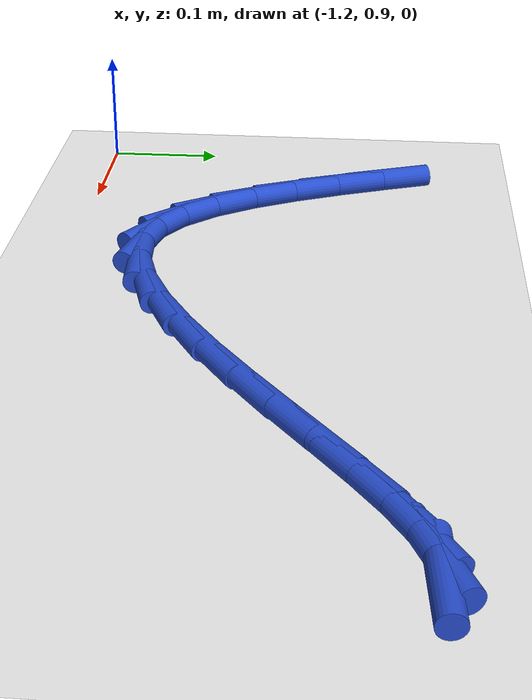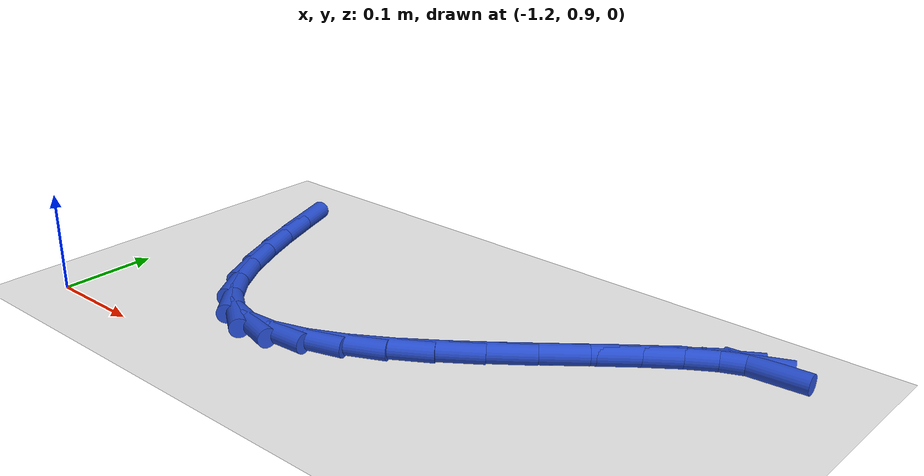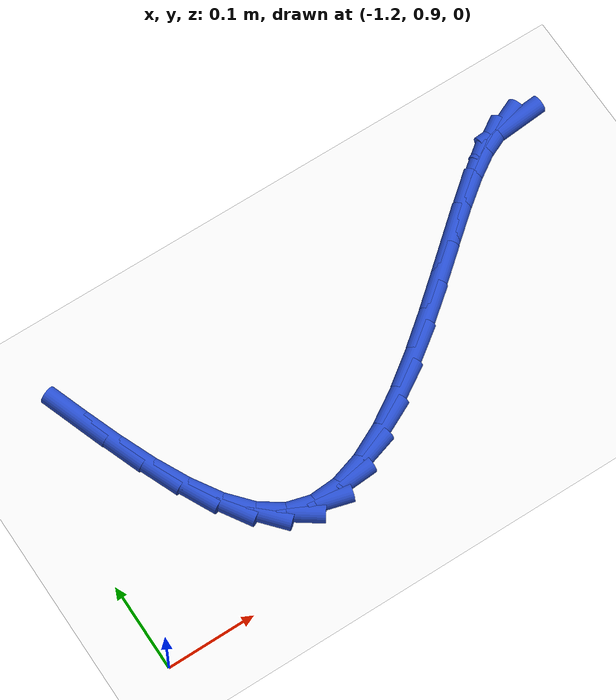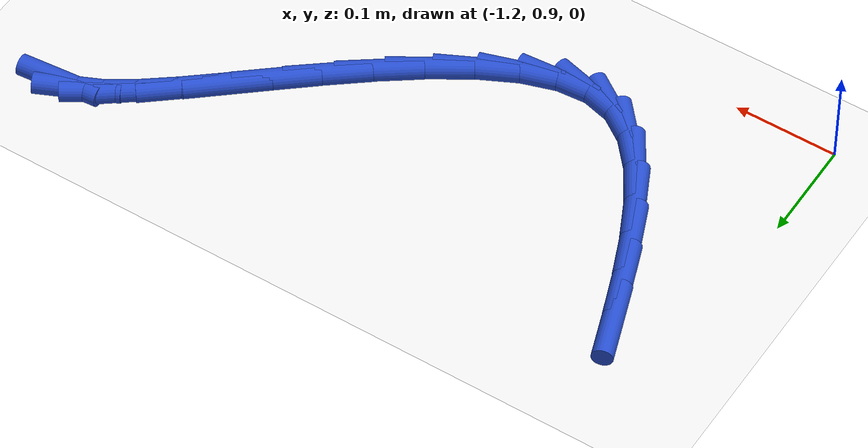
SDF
<sdf version="1.6">
 <world name="default">
  <model name="ground_plane">
   <static>1</static>
   <link name="link">
    <collision name="collision">
     <geometry><plane><normal>0 0 1</normal><size>100 100</size></plane></geometry>
     <surface><friction><ode><mu>100</mu><mu2>50</mu2></ode></friction></surface>
    </collision>
    <visual name="visual">
     <cast_shadows>0</cast_shadows>
     <geometry><plane><normal>0 0 1</normal><size>100 100</size></plane></geometry>
     <material>
      <script><uri>file://media/materials/scripts/gazebo.material</uri><name>Gazebo/WhiteGlow</name></script>
     </material>
    </visual>
   </link>
  </model>
  <model name="line">
   <link name="link_40">
    <pose>-0.5845754544402983 1.2047021949950043 0.01 0 1.57 0.08310487150110424</pose>
    <collision name="collision">
     <geometry><cylinder><radius>0.01</radius><length>0.08</length></cylinder></geometry>
    </collision>
    <visual name="visual">
     <material>
      <script><name>Gazebo/Blue</name><uri>file://media/materials/scripts/gazebo.material</uri></script>
     </material>
     <geometry><cylinder><radius>0.01</radius><length>0.08</length></cylinder></geometry>
    </visual>
   </link>
   <link name="link_41">
    <pose>-0.6021812904799191 1.2032356865902885 0.01 0 1.57 0.42419387838292544</pose>
    <collision name="collision">
     <geometry><cylinder><radius>0.01</radius><length>0.08</length></cylinder></geometry>
    </collision>
    <visual name="visual">
     <material>
      <script><name>Gazebo/Blue</name><uri>file://media/materials/scripts/gazebo.material</uri></script>
     </material>
     <geometry><cylinder><radius>0.01</radius><length>0.08</length></cylinder></geometry>
    </visual>
   </link>
   <link name="link_42">
    <pose>-0.6241829758284656 1.1932994556206564 0.01 0 1.57 0.5791119335519502</pose>
    <collision name="collision">
     <geometry><cylinder><radius>0.01</radius><length>0.08</length></cylinder></geometry>
    </collision>
    <visual name="visual">
     <material>
      <script><name>Gazebo/Blue</name><uri>file://media/materials/scripts/gazebo.material</uri></script>
     </material>
     <geometry><cylinder><radius>0.01</radius><length>0.08</length></cylinder></geometry>
    </visual>
   </link>
   <link name="link_43">
    <pose>-0.649989122312652 1.1764248184642894 0.01 0 1.57 0.6548128186955411</pose>
    <collision name="collision">
     <geometry><cylinder><radius>0.01</radius><length>0.08</length></cylinder></geometry>
    </collision>
    <visual name="visual">
     <material>
      <script><name>Gazebo/Blue</name><uri>file://media/materials/scripts/gazebo.material</uri></script>
     </material>
     <geometry><cylinder><radius>0.01</radius><length>0.08</length></cylinder></geometry>
    </visual>
   </link>
   <link name="link_44">
    <pose>-0.679008341759192 1.1541430914993682 0.01 0 1.57 0.6908100697643068</pose>
    <collision name="collision">
     <geometry><cylinder><radius>0.01</radius><length>0.08</length></cylinder></geometry>
    </collision>
    <visual name="visual">
     <material>
      <script><name>Gazebo/Blue</name><uri>file://media/materials/scripts/gazebo.material</uri></script>
     </material>
     <geometry><cylinder><radius>0.01</radius><length>0.08</length></cylinder></geometry>
    </visual>
   </link>
   <link name="link_45">
    <pose>-0.7106492459948 1.1279855911040753 0.01 0 1.57 0.7024462666055163</pose>
    <collision name="collision">
     <geometry><cylinder><radius>0.01</radius><length>0.08</length></cylinder></geometry>
    </collision>
    <visual name="visual">
     <material>
      <script><name>Gazebo/Blue</name><uri>file://media/materials/scripts/gazebo.material</uri></script>
     </material>
     <geometry><cylinder><radius>0.01</radius><length>0.08</length></cylinder></geometry>
    </visual>
   </link>
   <link name="link_46">
    <pose>-0.7443204468461889 1.0994836336565907 0.01 0 1.57 0.6956901455982073</pose>
    <collision name="collision">
     <geometry><cylinder><radius>0.01</radius><length>0.08</length></cylinder></geometry>
    </collision>
    <visual name="visual">
     <material>
      <script><name>Gazebo/Blue</name><uri>file://media/materials/scripts/gazebo.material</uri></script>
     </material>
     <geometry><cylinder><radius>0.01</radius><length>0.08</length></cylinder></geometry>
    </visual>
   </link>
   <link name="link_47">
    <pose>-0.7794305561400736 1.0701685355350967 0.01 0 1.57 0.6718654380980967</pose>
    <collision name="collision">
     <geometry><cylinder><radius>0.01</radius><length>0.08</length></cylinder></geometry>
    </collision>
    <visual name="visual">
     <material>
      <script><name>Gazebo/Blue</name><uri>file://media/materials/scripts/gazebo.material</uri></script>
     </material>
     <geometry><cylinder><radius>0.01</radius><length>0.08</length></cylinder></geometry>
    </visual>
   </link>
   <link name="link_48">
    <pose>-0.8153881857031674 1.0415716131177744 0.01 0 1.57 0.6289795646332477</pose>
    <collision name="collision">
     <geometry><cylinder><radius>0.01</radius><length>0.08</length></cylinder></geometry>
    </collision>
    <visual name="visual">
     <material>
      <script><name>Gazebo/Blue</name><uri>file://media/materials/scripts/gazebo.material</uri></script>
     </material>
     <geometry><cylinder><radius>0.01</radius><length>0.08</length></cylinder></geometry>
    </visual>
   </link>
   <link name="link_49">
    <pose>-0.8516019473621842 1.0152241827828052 0.01 0 1.57 0.5614514153373033</pose>
    <collision name="collision">
     <geometry><cylinder><radius>0.01</radius><length>0.08</length></cylinder></geometry>
    </collision>
    <visual name="visual">
     <material>
      <script><name>Gazebo/Blue</name><uri>file://media/materials/scripts/gazebo.material</uri></script>
     </material>
     <geometry><cylinder><radius>0.01</radius><length>0.08</length></cylinder></geometry>
    </visual>
   </link>
   <link name="link_50">
    <pose>-0.8874804529438383 0.9926575609083705 0.01 0 1.57 0.4585664651938671</pose>
    <collision name="collision">
     <geometry><cylinder><radius>0.01</radius><length>0.08</length></cylinder></geometry>
    </collision>
    <visual name="visual">
     <material>
      <script><name>Gazebo/Blue</name><uri>file://media/materials/scripts/gazebo.material</uri></script>
     </material>
     <geometry><cylinder><radius>0.01</radius><length>0.08</length></cylinder></geometry>
    </visual>
   </link>
   <link name="link_51">
    <pose>-0.9224323142748427 0.9754030638726515 0.01 0 1.57 0.3018759165477437</pose>
    <collision name="collision">
     <geometry><cylinder><radius>0.01</radius><length>0.08</length></cylinder></geometry>
    </collision>
    <visual name="visual">
     <material>
      <script><name>Gazebo/Blue</name><uri>file://media/materials/scripts/gazebo.material</uri></script>
     </material>
     <geometry><cylinder><radius>0.01</radius><length>0.08</length></cylinder></geometry>
    </visual>
   </link>
   <link name="link_52">
    <pose>-0.9558661431819123 0.9649920080538297 0.01 0 1.57 0.06491541904355166</pose>
    <collision name="collision">
     <geometry><cylinder><radius>0.01</radius><length>0.08</length></cylinder></geometry>
    </collision>
    <visual name="visual">
     <material>
      <script><name>Gazebo/Blue</name><uri>file://media/materials/scripts/gazebo.material</uri></script>
     </material>
     <geometry><cylinder><radius>0.01</radius><length>0.08</length></cylinder></geometry>
    </visual>
   </link>
   <link name="link_53">
    <pose>-0.9871905514917602 0.9629557098300862 0.01 0 1.57 -0.26773312363121343</pose>
    <collision name="collision">
     <geometry><cylinder><radius>0.01</radius><length>0.08</length></cylinder></geometry>
    </collision>
    <visual name="visual">
     <material>
      <script><name>Gazebo/Blue</name><uri>file://media/materials/scripts/gazebo.material</uri></script>
     </material>
     <geometry><cylinder><radius>0.01</radius><length>0.08</length></cylinder></geometry>
    </visual>
   </link>
   <link name="link_54">
    <pose>-1.0158187960517608 0.9708089856566822 0.01 0 1.57 -0.6133430454166195</pose>
    <collision name="collision">
     <geometry><cylinder><radius>0.01</radius><length>0.08</length></cylinder></geometry>
    </collision>
    <visual name="visual">
     <material>
      <script><name>Gazebo/Blue</name><uri>file://media/materials/scripts/gazebo.material</uri></script>
     </material>
     <geometry><cylinder><radius>0.01</radius><length>0.08</length></cylinder></geometry>
    </visual>
   </link>
   <link name="link_55">
    <pose>-1.0414970492469429 0.9888840779784157 0.01 0 1.57 -0.8587390230001272</pose>
    <collision name="collision">
     <geometry><cylinder><radius>0.01</radius><length>0.08</length></cylinder></geometry>
    </collision>
    <visual name="visual">
     <material>
      <script><name>Gazebo/Blue</name><uri>file://media/materials/scripts/gazebo.material</uri></script>
     </material>
     <geometry><cylinder><radius>0.01</radius><length>0.08</length></cylinder></geometry>
    </visual>
   </link>
   <link name="link_56">
    <pose>-1.0645213549467363 1.0155599898955874 0.01 0 1.57 -1.0165618677070125</pose>
    <collision name="collision">
     <geometry><cylinder><radius>0.01</radius><length>0.08</length></cylinder></geometry>
    </collision>
    <visual name="visual">
     <material>
      <script><name>Gazebo/Blue</name><uri>file://media/materials/scripts/gazebo.material</uri></script>
     </material>
     <geometry><cylinder><radius>0.01</radius><length>0.08</length></cylinder></geometry>
    </visual>
   </link>
   <link name="link_57">
    <pose>-1.0852392483053268 1.0490328184911082 0.01 0 1.57 -1.1170533272375265</pose>
    <collision name="collision">
     <geometry><cylinder><radius>0.01</radius><length>0.08</length></cylinder></geometry>
    </collision>
    <visual name="visual">
     <material>
      <script><name>Gazebo/Blue</name><uri>file://media/materials/scripts/gazebo.material</uri></script>
     </material>
     <geometry><cylinder><radius>0.01</radius><length>0.08</length></cylinder></geometry>
    </visual>
   </link>
   <link name="link_58">
    <pose>-1.103998264476901 1.0874986608478898 0.01 0 1.57 -1.1802788930008468</pose>
    <collision name="collision">
     <geometry><cylinder><radius>0.01</radius><length>0.08</length></cylinder></geometry>
    </collision>
    <visual name="visual">
     <material>
      <script><name>Gazebo/Blue</name><uri>file://media/materials/scripts/gazebo.material</uri></script>
     </material>
     <geometry><cylinder><radius>0.01</radius><length>0.08</length></cylinder></geometry>
    </visual>
   </link>
   <link name="link_59">
    <pose>-1.1211459386156457 1.1291536140488423 0.01 0 1.57 -1.2172544023720744</pose>
    <collision name="collision">
     <geometry><cylinder><radius>0.01</radius><length>0.08</length></cylinder></geometry>
    </collision>
    <visual name="visual">
     <material>
      <script><name>Gazebo/Blue</name><uri>file://media/materials/scripts/gazebo.material</uri></script>
     </material>
     <geometry><cylinder><radius>0.01</radius><length>0.08</length></cylinder></geometry>
    </visual>
   </link>
   <link name="link_60">
    <pose>-1.1370298058757466 1.1721937751768783 0.01 0 1.57 -1.2330750753418653</pose>
    <collision name="collision">
     <geometry><cylinder><radius>0.01</radius><length>0.08</length></cylinder></geometry>
    </collision>
    <visual name="visual">
     <material>
      <script><name>Gazebo/Blue</name><uri>file://media/materials/scripts/gazebo.material</uri></script>
     </material>
     <geometry><cylinder><radius>0.01</radius><length>0.08</length></cylinder></geometry>
    </visual>
   </link>
  </model>
 </world>
</sdf>
